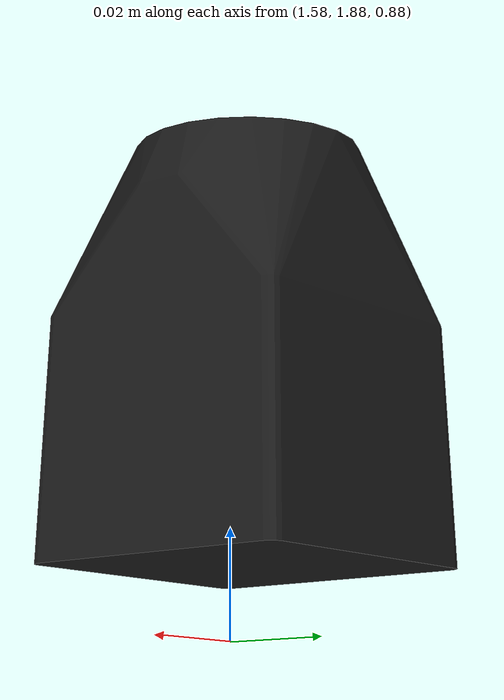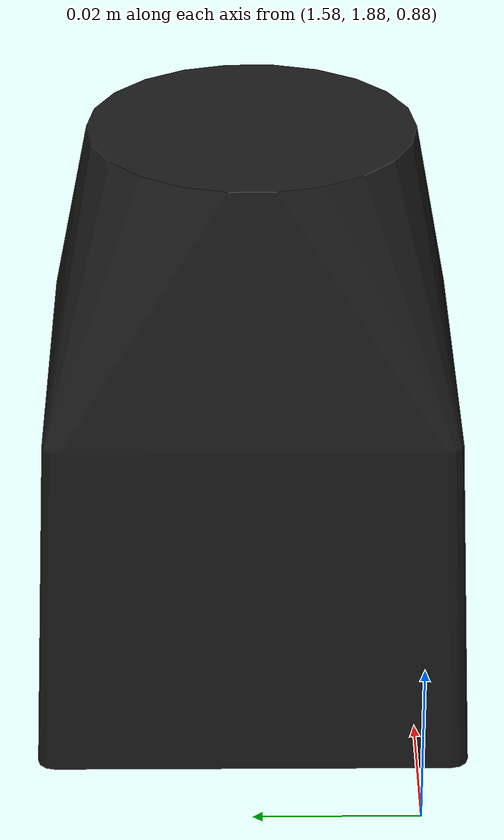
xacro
<?xml version="1.0"?>
<robot name="break_beam" xmlns:xacro="http://www.ros.org/wiki/xacro">
  <xacro:arg name="prefix" default="break_beam_"/>

  <!-- URDF -->
  <xacro:include filename="$(find ros_industrial_support)/urdf/break_beam/break_beam.urdf.xacro"/>
  <xacro:break_beam_urdf prefix="$(arg prefix)"/>

  <!-- Gazebo -->
  <xacro:include filename="$(find ros_industrial_support)/urdf/break_beam/break_beam.gazebo.xacro"/>
  <xacro:break_beam_gazebo prefix="$(arg prefix)"/>

</robot>

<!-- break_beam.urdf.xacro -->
<robot name="break_beam_urdf" xmlns:xacro="http://www.ros.org/wiki/xacro">
  <xacro:macro name="break_beam_urdf" params="prefix">
    <!-- link list -->
    <link name="${prefix}world_interface"/>
    <link name="${prefix}base_link">
      <visual>
        <origin xyz="0 0 0" rpy="0 0 0" />
        <geometry>
          <mesh filename="package://ros_industrial_support/meshes/break_beam/visual/hokuyo.dae" />
        </geometry>
        <material name="dark_grey">
          <color rgba="0.1 0.1 0.1 1.0"/>
        </material>
      </visual>
      <collision>
        <origin xyz="0 0 0" rpy="0 0 0" />
        <geometry>
          <mesh filename="package://ros_industrial_support/meshes/break_beam/collision/hokuyo.dae" />
        </geometry>
        <material name="dark_grey"/>
      </collision>
      <inertial>
        <origin xyz="0 0 0" rpy="0 0 0" />
        <inertia ixx="0.1" ixy="0" ixz="0"
                 iyy="0.1" iyz="0"
                 izz="0.1" />
        <mass value="1" />
      </inertial>
    </link>
    <link name="${prefix}optical_link"/>

    <!-- joint list -->
    <joint name="${prefix}world_joint" type="fixed">
      <parent link="${prefix}world_interface" />
      <child link="${prefix}base_link" />
      <origin xyz="1.6 1.9 0.925" rpy="0 0 ${radians(180)}" />
    </joint>
    <joint name="${prefix}joint_1" type="fixed">
      <parent link="${prefix}base_link" />
      <child link="${prefix}optical_link" />
      <origin xyz="0.025 0 0" rpy="0 0 0" />
    </joint>
  </xacro:macro>
</robot>
